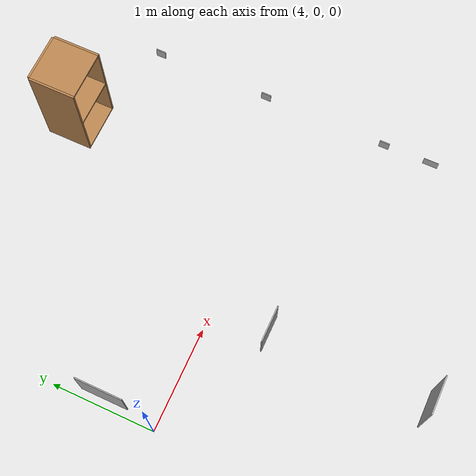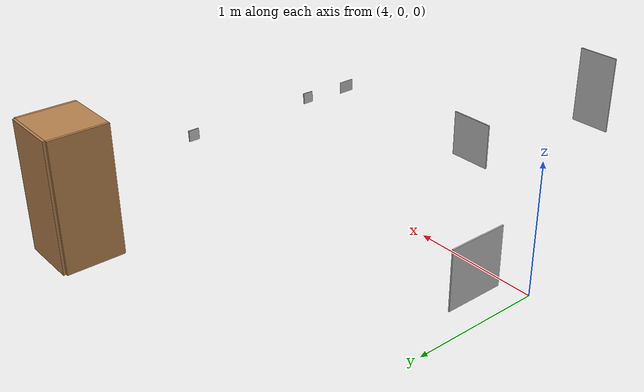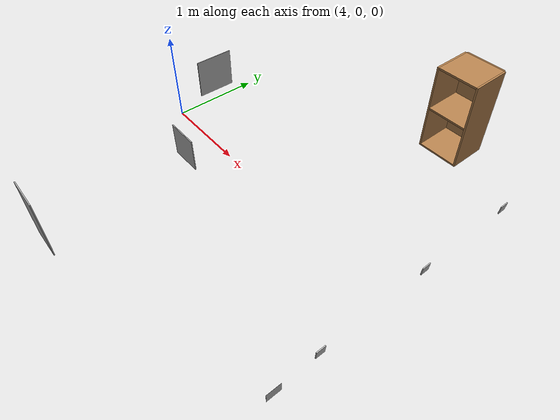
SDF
<sdf version="1.6">
 <world name="default">
  <model name="Apriltag36_11_00000">
   <link name="main">
    <visual name="main_Visual">
     <geometry><box><size>0.1 0.1 0.01</size></box></geometry>
     <material>
      <script>
       <uri>file://models/Apriltag36_11_00000/materials/scripts</uri>
       <uri>file://models/Apriltag36_11_00000/materials/textures</uri>
       <name>Apriltag36_11_00000</name>
      </script>
     </material>
    </visual>
   </link>
   <static>1</static>
   <pose>7.39075 0.440228 0.073883 0 -1.51519 0</pose>
  </model>
  <model name="Apriltag36_11_00000_4">
   <link name="main">
    <visual name="main_Visual">
     <geometry><box><size>0.1 0.1 0.01</size></box></geometry>
     <material>
      <script>
       <uri>file://models/Apriltag36_11_00000/materials/scripts</uri>
       <uri>file://models/Apriltag36_11_00000/materials/textures</uri>
       <name>Apriltag36_11_00000</name>
      </script>
     </material>
    </visual>
   </link>
   <static>1</static>
   <pose>7.38647 -0.81515 0.073883 0 -1.51519 0</pose>
  </model>
  <model name="Apriltag36_11_00000_1">
   <link name="main">
    <visual name="main_Visual">
     <geometry><box><size>0.1 0.1 0.01</size></box></geometry>
     <material>
      <script>
       <uri>file://models/Apriltag36_11_00000/materials/scripts</uri>
       <uri>file://models/Apriltag36_11_00000/materials/textures</uri>
       <name>Apriltag36_11_00000</name>
      </script>
     </material>
    </visual>
   </link>
   <static>1</static>
   <pose>7.39746 1.5994 0.073883 0 -1.51519 0</pose>
  </model>
  <model name="Apriltag36_11_00002">
   <link name="main">
    <visual name="main_Visual">
     <geometry><box><size>0.344197 0.647831 0.01</size></box></geometry>
     <material>
      <script>
       <uri>file://models/Apriltag36_11_00002/materials/scripts</uri>
       <uri>file://models/Apriltag36_11_00002/materials/textures</uri>
       <name>Apriltag36_11_00002</name>
      </script>
     </material>
    </visual>
   </link>
   <static>1</static>
   <pose>5.12047 -2.06483 0.545634 -1.56829 0 0</pose>
  </model>
  <model name="Apriltag36_11_00003">
   <link name="main">
    <visual name="main_Visual">
     <geometry><box><size>0.337867 0.352651 0.01</size></box></geometry>
     <material>
      <script>
       <uri>file://models/Apriltag36_11_00002/materials/scripts</uri>
       <uri>file://models/Apriltag36_11_00002/materials/textures</uri>
       <name>Apriltag36_11_00002</name>
      </script>
     </material>
    </visual>
   </link>
   <static>1</static>
   <pose>5.12777 -0.58732 0.545634 -1.56829 0 0</pose>
  </model>
  <model name="Apriltag36_11_00003">
   <link name="main">
    <visual name="main_Visual">
     <geometry><box><size>0.337867 0.352651 0.01</size></box></geometry>
     <material>
      <script>
       <uri>file://models/Apriltag36_11_00002/materials/scripts</uri>
       <uri>file://models/Apriltag36_11_00002/materials/textures</uri>
       <name>Apriltag36_11_00002</name>
      </script>
     </material>
    </visual>
   </link>
   <static>1</static>
   <pose>5.12777 -0.58732 0.545634 -1.56829 0 0</pose>
  </model>
  <model name="Apriltag36_11_00008_1">
   <link name="main">
    <visual name="main_Visual">
     <geometry><box><size>0.1116 0.149945 0.000575</size></box></geometry>
     <material>
      <script>
       <uri>file://models/Apriltag36_11_00008/materials/scripts</uri>
       <uri>file://models/Apriltag36_11_00008/materials/textures</uri>
       <name>Apriltag36_11_00008</name>
      </script>
     </material>
    </visual>
   </link>
   <static>1</static>
   <pose>7.3994 -1.29434 0.052986 -1.71746 -1.56475 1.71746</pose>
  </model>
  <model name="Apriltag36_11_00015_1">
   <link name="main">
    <visual name="main_Visual">
     <geometry><box><size>0.452967 0.447425 0.01</size></box></geometry>
     <material>
      <script>
       <uri>file://models/Apriltag36_11_00015/materials/scripts</uri>
       <uri>file://models/Apriltag36_11_00015/materials/textures</uri>
       <name>Apriltag36_11_00015</name>
      </script>
     </material>
    </visual>
   </link>
   <static>1</static>
   <pose>4.05941 0.485004 0.396207 3.14159 1.5706 3.14159</pose>
  </model>
  <model name="cabinet">
   <static>1</static>
   <link name="cabinet_bottom_plate">
    <inertial>
     <pose>0 0 -1 0 -0 0</pose>
     <inertia><ixx>2.05</ixx><ixy>0</ixy><ixz>0</ixz><iyy>2.05</iyy><iyz>0</iyz><izz>2.05</izz></inertia>
     <mass>25</mass>
    </inertial>
    <collision name="cabinet_bottom_plate_geom">
     <pose>0 0 0.01 0 -0 0</pose>
     <geometry><box><size>0.45 0.45 0.02</size></box></geometry>
    </collision>
    <visual name="cabinet_bottom_plate_geom_visual">
     <pose>0 0 0.01 0 -0 0</pose>
     <geometry><box><size>0.45 0.45 0.02</size></box></geometry>
     <material>
      <script><uri>file://media/materials/scripts/gazebo.material</uri><name>Gazebo/Wood</name></script>
     </material>
    </visual>
    <collision name="cabinet_bottom_plate_geom_cabinet_back_plate">
     <pose>0.235 0 0.51 0 -0 0</pose>
     <geometry><box><size>0.02 0.45 1.02</size></box></geometry>
    </collision>
    <visual name="cabinet_bottom_plate_geom_cabinet_back_plate_visual">
     <pose>0.235 0 0.51 0 -0 0</pose>
     <geometry><box><size>0.02 0.45 1.02</size></box></geometry>
     <material>
      <script><uri>file://media/materials/scripts/gazebo.material</uri><name>Gazebo/Wood</name></script>
     </material>
    </visual>
    <collision name="cabinet_bottom_plate_geom_cabinet_left_plate">
     <pose>0 0.235 0.51 0 -0 0</pose>
     <geometry><box><size>0.45 0.02 1.02</size></box></geometry>
    </collision>
    <visual name="cabinet_bottom_plate_geom_cabinet_left_plate_visual">
     <pose>0 0.235 0.51 0 -0 0</pose>
     <geometry><box><size>0.45 0.02 1.02</size></box></geometry>
     <material>
      <script><uri>file://media/materials/scripts/gazebo.material</uri><name>Gazebo/Wood</name></script>
     </material>
    </visual>
    <collision name="cabinet_bottom_plate_geom_cabinet_middle_plate">
     <pose>0 0 0.51 0 -0 0</pose>
     <geometry><box><size>0.45 0.45 0.02</size></box></geometry>
    </collision>
    <visual name="cabinet_bottom_plate_geom_cabinet_middle_plate_visual">
     <pose>0 0 0.51 0 -0 0</pose>
     <geometry><box><size>0.45 0.45 0.02</size></box></geometry>
     <material>
      <script><uri>file://media/materials/scripts/gazebo.material</uri><name>Gazebo/Wood</name></script>
     </material>
    </visual>
    <collision name="cabinet_bottom_plate_geom_cabinet_right_plate">
     <pose>0 -0.235 0.51 0 -0 0</pose>
     <geometry><box><size>0.45 0.02 1.02</size></box></geometry>
    </collision>
    <visual name="cabinet_bottom_plate_geom_cabinet_right_plate_visual">
     <pose>0 -0.235 0.51 0 -0 0</pose>
     <geometry><box><size>0.45 0.02 1.02</size></box></geometry>
     <material>
      <script><uri>file://media/materials/scripts/gazebo.material</uri><name>Gazebo/Wood</name></script>
     </material>
    </visual>
    <collision name="cabinet_bottom_plate_geom_cabinet_top_plate">
     <pose>0 0 1.01 0 -0 0</pose>
     <geometry><box><size>0.45 0.45 0.02</size></box></geometry>
    </collision>
    <visual name="cabinet_bottom_plate_geom_cabinet_top_plate_visual">
     <pose>0 0 1.01 0 -0 0</pose>
     <geometry><box><size>0.45 0.45 0.02</size></box></geometry>
     <material>
      <script><uri>file://media/materials/scripts/gazebo.material</uri><name>Gazebo/Wood</name></script>
     </material>
    </visual>
   </link>
   <pose>6.43693 2.00859 0 0 -0 1.5712</pose>
  </model>
 </world>
</sdf>
